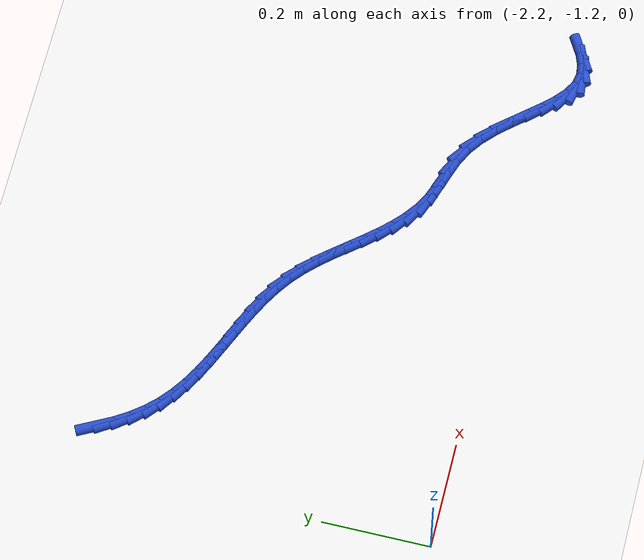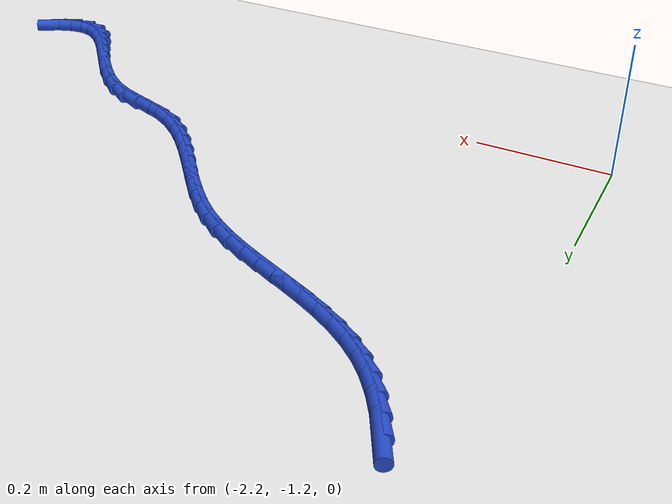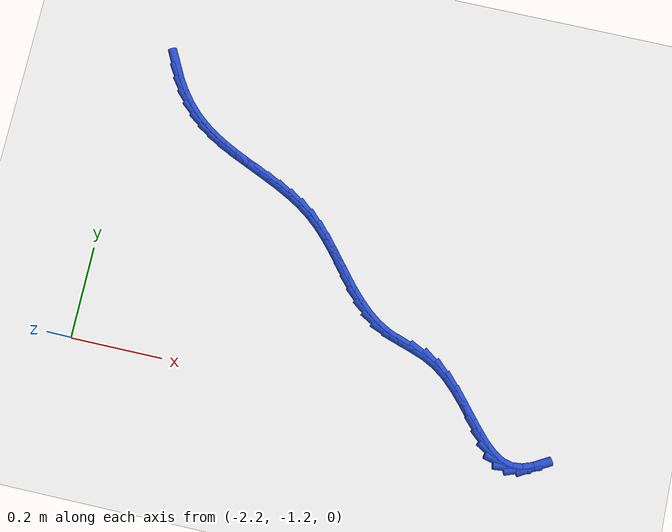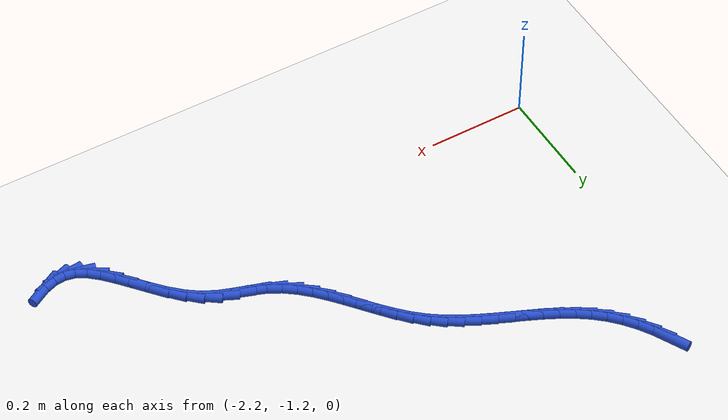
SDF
<sdf version="1.6">
 <world name="default">
  <model name="ground_plane">
   <static>1</static>
   <link name="link">
    <collision name="collision">
     <geometry><plane><normal>0 0 1</normal><size>100 100</size></plane></geometry>
     <surface><friction><ode><mu>100</mu><mu2>50</mu2></ode></friction></surface>
    </collision>
    <visual name="visual">
     <cast_shadows>0</cast_shadows>
     <geometry><plane><normal>0 0 1</normal><size>100 100</size></plane></geometry>
     <material>
      <script><uri>file://media/materials/scripts/gazebo.material</uri><name>Gazebo/WhiteGlow</name></script>
     </material>
    </visual>
   </link>
  </model>
  <model name="line">
   <link name="link_139">
    <pose>-2.1197568017463664 -0.5675922333907893 0.01 0 1.57 -1.0885891091399615</pose>
    <collision name="collision">
     <geometry><cylinder><radius>0.01</radius><length>0.08</length></cylinder></geometry>
    </collision>
    <visual name="visual">
     <material>
      <script><name>Gazebo/Blue</name><uri>file://media/materials/scripts/gazebo.material</uri></script>
     </material>
     <geometry><cylinder><radius>0.01</radius><length>0.08</length></cylinder></geometry>
    </visual>
   </link>
   <link name="link_140">
    <pose>-2.1054016586803446 -0.59501792594363 0.01 0 1.57 -1.002790215187439</pose>
    <collision name="collision">
     <geometry><cylinder><radius>0.01</radius><length>0.08</length></cylinder></geometry>
    </collision>
    <visual name="visual">
     <material>
      <script><name>Gazebo/Blue</name><uri>file://media/materials/scripts/gazebo.material</uri></script>
     </material>
     <geometry><cylinder><radius>0.01</radius><length>0.08</length></cylinder></geometry>
    </visual>
   </link>
   <link name="link_141">
    <pose>-2.0889896447034535 -0.62073567328807 0.01 0 1.57 -0.9102401521810269</pose>
    <collision name="collision">
     <geometry><cylinder><radius>0.01</radius><length>0.08</length></cylinder></geometry>
    </collision>
    <visual name="visual">
     <material>
      <script><name>Gazebo/Blue</name><uri>file://media/materials/scripts/gazebo.material</uri></script>
     </material>
     <geometry><cylinder><radius>0.01</radius><length>0.08</length></cylinder></geometry>
    </visual>
   </link>
   <link name="link_142">
    <pose>-2.0705197054814275 -0.6445066165881634 0.01 0 1.57 -0.8104761698123846</pose>
    <collision name="collision">
     <geometry><cylinder><radius>0.01</radius><length>0.08</length></cylinder></geometry>
    </collision>
    <visual name="visual">
     <material>
      <script><name>Gazebo/Blue</name><uri>file://media/materials/scripts/gazebo.material</uri></script>
     </material>
     <geometry><cylinder><radius>0.01</radius><length>0.08</length></cylinder></geometry>
    </visual>
   </link>
   <link name="link_143">
    <pose>-2.0499907866800045 -0.6660918970079645 0.01 0 1.57 -0.7040634198668666</pose>
    <collision name="collision">
     <geometry><cylinder><radius>0.01</radius><length>0.08</length></cylinder></geometry>
    </collision>
    <visual name="visual">
     <material>
      <script><name>Gazebo/Blue</name><uri>file://media/materials/scripts/gazebo.material</uri></script>
     </material>
     <geometry><cylinder><radius>0.01</radius><length>0.08</length></cylinder></geometry>
    </visual>
   </link>
   <link name="link_144">
    <pose>-2.0274100387263387 -0.685268788837935 0.01 0 1.57 -0.6046933780929197</pose>
    <collision name="collision">
     <geometry><cylinder><radius>0.01</radius><length>0.08</length></cylinder></geometry>
    </collision>
    <visual name="visual">
     <material>
      <script><name>Gazebo/Blue</name><uri>file://media/materials/scripts/gazebo.material</uri></script>
     </material>
     <geometry><cylinder><radius>0.01</radius><length>0.08</length></cylinder></geometry>
    </visual>
   </link>
   <link name="link_145">
    <pose>-2.0029620821564498 -0.7021635280937502 0.01 0 1.57 -0.5261500639224455</pose>
    <collision name="collision">
     <geometry><cylinder><radius>0.01</radius><length>0.08</length></cylinder></geometry>
    </collision>
    <visual name="visual">
     <material>
      <script><name>Gazebo/Blue</name><uri>file://media/materials/scripts/gazebo.material</uri></script>
     </material>
     <geometry><cylinder><radius>0.01</radius><length>0.08</length></cylinder></geometry>
    </visual>
   </link>
   <link name="link_146">
    <pose>-1.9770029793590942 -0.717239459079842 0.01 0 1.57 -0.46896435929841884</pose>
    <collision name="collision">
     <geometry><cylinder><radius>0.01</radius><length>0.08</length></cylinder></geometry>
    </collision>
    <visual name="visual">
     <material>
      <script><name>Gazebo/Blue</name><uri>file://media/materials/scripts/gazebo.material</uri></script>
     </material>
     <geometry><cylinder><radius>0.01</radius><length>0.08</length></cylinder></geometry>
    </visual>
   </link>
   <link name="link_147">
    <pose>-1.949895791381835 -0.7309736876521945 0.01 0 1.57 -0.43229851076975107</pose>
    <collision name="collision">
     <geometry><cylinder><radius>0.01</radius><length>0.08</length></cylinder></geometry>
    </collision>
    <visual name="visual">
     <material>
      <script><name>Gazebo/Blue</name><uri>file://media/materials/scripts/gazebo.material</uri></script>
     </material>
     <geometry><cylinder><radius>0.01</radius><length>0.08</length></cylinder></geometry>
    </visual>
   </link>
   <link name="link_148">
    <pose>-1.9220035792722368 -0.7438433196667894 0.01 0 1.57 -0.4152139679676665</pose>
    <collision name="collision">
     <geometry><cylinder><radius>0.01</radius><length>0.08</length></cylinder></geometry>
    </collision>
    <visual name="visual">
     <material>
      <script><name>Gazebo/Blue</name><uri>file://media/materials/scripts/gazebo.material</uri></script>
     </material>
     <geometry><cylinder><radius>0.01</radius><length>0.08</length></cylinder></geometry>
    </visual>
   </link>
   <link name="link_149">
    <pose>-1.8936894040778642 -0.7563254609796105 0.01 0 1.57 -0.4170906585197495</pose>
    <collision name="collision">
     <geometry><cylinder><radius>0.01</radius><length>0.08</length></cylinder></geometry>
    </collision>
    <visual name="visual">
     <material>
      <script><name>Gazebo/Blue</name><uri>file://media/materials/scripts/gazebo.material</uri></script>
     </material>
     <geometry><cylinder><radius>0.01</radius><length>0.08</length></cylinder></geometry>
    </visual>
   </link>
   <link name="link_150">
    <pose>-1.8653163268462796 -0.7688972174466405 0.01 0 1.57 -0.43778647897770506</pose>
    <collision name="collision">
     <geometry><cylinder><radius>0.01</radius><length>0.08</length></cylinder></geometry>
    </collision>
    <visual name="visual">
     <material>
      <script><name>Gazebo/Blue</name><uri>file://media/materials/scripts/gazebo.material</uri></script>
     </material>
     <geometry><cylinder><radius>0.01</radius><length>0.08</length></cylinder></geometry>
    </visual>
   </link>
   <link name="link_151">
    <pose>-1.8372474086250474 -0.7820356949238625 0.01 0 1.57 -0.47760482023623824</pose>
    <collision name="collision">
     <geometry><cylinder><radius>0.01</radius><length>0.08</length></cylinder></geometry>
    </collision>
    <visual name="visual">
     <material>
      <script><name>Gazebo/Blue</name><uri>file://media/materials/scripts/gazebo.material</uri></script>
     </material>
     <geometry><cylinder><radius>0.01</radius><length>0.08</length></cylinder></geometry>
    </visual>
   </link>
   <link name="link_152">
    <pose>-1.8098457104617325 -0.79621799926726 0.01 0 1.57 -0.537077742854119</pose>
    <collision name="collision">
     <geometry><cylinder><radius>0.01</radius><length>0.08</length></cylinder></geometry>
    </collision>
    <visual name="visual">
     <material>
      <script><name>Gazebo/Blue</name><uri>file://media/materials/scripts/gazebo.material</uri></script>
     </material>
     <geometry><cylinder><radius>0.01</radius><length>0.08</length></cylinder></geometry>
    </visual>
   </link>
   <link name="link_153">
    <pose>-1.7834742934038976 -0.8119212363328153 0.01 0 1.57 -0.616522773784093</pose>
    <collision name="collision">
     <geometry><cylinder><radius>0.01</radius><length>0.08</length></cylinder></geometry>
    </collision>
    <visual name="visual">
     <material>
      <script><name>Gazebo/Blue</name><uri>file://media/materials/scripts/gazebo.material</uri></script>
     </material>
     <geometry><cylinder><radius>0.01</radius><length>0.08</length></cylinder></geometry>
    </visual>
   </link>
   <link name="link_154">
    <pose>-1.7584962184991066 -0.8296225119765122 0.01 0 1.57 -0.7121880990702554</pose>
    <collision name="collision">
     <geometry><cylinder><radius>0.01</radius><length>0.08</length></cylinder></geometry>
    </collision>
    <visual name="visual">
     <material>
      <script><name>Gazebo/Blue</name><uri>file://media/materials/scripts/gazebo.material</uri></script>
     </material>
     <geometry><cylinder><radius>0.01</radius><length>0.08</length></cylinder></geometry>
    </visual>
   </link>
   <link name="link_155">
    <pose>-1.7352189028291274 -0.8497187609547211 0.01 0 1.57 -0.7949141108134725</pose>
    <collision name="collision">
     <geometry><cylinder><radius>0.01</radius><length>0.08</length></cylinder></geometry>
    </collision>
    <visual name="visual">
     <material>
      <script><name>Gazebo/Blue</name><uri>file://media/materials/scripts/gazebo.material</uri></script>
     </material>
     <geometry><cylinder><radius>0.01</radius><length>0.08</length></cylinder></geometry>
    </visual>
   </link>
   <link name="link_156">
    <pose>-1.7134577622026783 -0.8718980490115712 0.01 0 1.57 -0.8506921601592383</pose>
    <collision name="collision">
     <geometry><cylinder><radius>0.01</radius><length>0.08</length></cylinder></geometry>
    </collision>
    <visual name="visual">
     <material>
      <script><name>Gazebo/Blue</name><uri>file://media/materials/scripts/gazebo.material</uri></script>
     </material>
     <geometry><cylinder><radius>0.01</radius><length>0.08</length></cylinder></geometry>
    </visual>
   </link>
   <link name="link_157">
    <pose>-1.6927715859065962 -0.8954786977481475 0.01 0 1.57 -0.8807634041384128</pose>
    <collision name="collision">
     <geometry><cylinder><radius>0.01</radius><length>0.08</length></cylinder></geometry>
    </collision>
    <visual name="visual">
     <material>
      <script><name>Gazebo/Blue</name><uri>file://media/materials/scripts/gazebo.material</uri></script>
     </material>
     <geometry><cylinder><radius>0.01</radius><length>0.08</length></cylinder></geometry>
    </visual>
   </link>
   <link name="link_158">
    <pose>-1.6727169419215184 -0.9197758283365577 0.01 0 1.57 -0.8860224777478446</pose>
    <collision name="collision">
     <geometry><cylinder><radius>0.01</radius><length>0.08</length></cylinder></geometry>
    </collision>
    <visual name="visual">
     <material>
      <script><name>Gazebo/Blue</name><uri>file://media/materials/scripts/gazebo.material</uri></script>
     </material>
     <geometry><cylinder><radius>0.01</radius><length>0.08</length></cylinder></geometry>
    </visual>
   </link>
   <link name="link_159">
    <pose>-1.6528503982280833 -0.94410456194891 0.01 0 1.57 -0.8663577742891753</pose>
    <collision name="collision">
     <geometry><cylinder><radius>0.01</radius><length>0.08</length></cylinder></geometry>
    </collision>
    <visual name="visual">
     <material>
      <script><name>Gazebo/Blue</name><uri>file://media/materials/scripts/gazebo.material</uri></script>
     </material>
     <geometry><cylinder><radius>0.01</radius><length>0.08</length></cylinder></geometry>
    </visual>
   </link>
   <link name="link_160">
    <pose>-1.6327285228069288 -0.9677800197573116 0.01 0 1.57 -0.8205258836279263</pose>
    <collision name="collision">
     <geometry><cylinder><radius>0.01</radius><length>0.08</length></cylinder></geometry>
    </collision>
    <visual name="visual">
     <material>
      <script><name>Gazebo/Blue</name><uri>file://media/materials/scripts/gazebo.material</uri></script>
     </material>
     <geometry><cylinder><radius>0.01</radius><length>0.08</length></cylinder></geometry>
    </visual>
   </link>
   <link name="link_161">
    <pose>-1.6119078836386922 -0.9901173229338702 0.01 0 1.57 -0.7464236305961537</pose>
    <collision name="collision">
     <geometry><cylinder><radius>0.01</radius><length>0.08</length></cylinder></geometry>
    </collision>
    <visual name="visual">
     <material>
      <script><name>Gazebo/Blue</name><uri>file://media/materials/scripts/gazebo.material</uri></script>
     </material>
     <geometry><cylinder><radius>0.01</radius><length>0.08</length></cylinder></geometry>
    </visual>
   </link>
   <link name="link_162">
    <pose>-1.5899450487040117 -1.0104315926506944 0.01 0 1.57 -0.6420049254932203</pose>
    <collision name="collision">
     <geometry><cylinder><radius>0.01</radius><length>0.08</length></cylinder></geometry>
    </collision>
    <visual name="visual">
     <material>
      <script><name>Gazebo/Blue</name><uri>file://media/materials/scripts/gazebo.material</uri></script>
     </material>
     <geometry><cylinder><radius>0.01</radius><length>0.08</length></cylinder></geometry>
    </visual>
   </link>
   <link name="link_163">
    <pose>-1.5663965859835263 -1.0280379500798908 0.01 0 1.57 -0.5072211825043703</pose>
    <collision name="collision">
     <geometry><cylinder><radius>0.01</radius><length>0.08</length></cylinder></geometry>
    </collision>
    <visual name="visual">
     <material>
      <script><name>Gazebo/Blue</name><uri>file://media/materials/scripts/gazebo.material</uri></script>
     </material>
     <geometry><cylinder><radius>0.01</radius><length>0.08</length></cylinder></geometry>
    </visual>
   </link>
   <link name="link_164">
    <pose>-1.540819172584329 -1.0422517307125703 0.01 0 1.57 -0.3708983109529174</pose>
    <collision name="collision">
     <geometry><cylinder><radius>0.01</radius><length>0.08</length></cylinder></geometry>
    </collision>
    <visual name="visual">
     <material>
      <script><name>Gazebo/Blue</name><uri>file://media/materials/scripts/gazebo.material</uri></script>
     </material>
     <geometry><cylinder><radius>0.01</radius><length>0.08</length></cylinder></geometry>
    </visual>
   </link>
   <link name="link_165">
    <pose>-1.5130975557088842 -1.0530325836032488 0.01 0 1.57 -0.3132760881215061</pose>
    <collision name="collision">
     <geometry><cylinder><radius>0.01</radius><length>0.08</length></cylinder></geometry>
    </collision>
    <visual name="visual">
     <material>
      <script><name>Gazebo/Blue</name><uri>file://media/materials/scripts/gazebo.material</uri></script>
     </material>
     <geometry><cylinder><radius>0.01</radius><length>0.08</length></cylinder></geometry>
    </visual>
   </link>
   <link name="link_166">
    <pose>-1.4841674931612507 -1.0624042910372546 0.01 0 1.57 -0.34437838035450097</pose>
    <collision name="collision">
     <geometry><cylinder><radius>0.01</radius><length>0.08</length></cylinder></geometry>
    </collision>
    <visual name="visual">
     <material>
      <script><name>Gazebo/Blue</name><uri>file://media/materials/scripts/gazebo.material</uri></script>
     </material>
     <geometry><cylinder><radius>0.01</radius><length>0.08</length></cylinder></geometry>
    </visual>
   </link>
   <link name="link_167">
    <pose>-1.4551747767387704 -1.0728031317528308 0.01 0 1.57 -0.4609758888361882</pose>
    <collision name="collision">
     <geometry><cylinder><radius>0.01</radius><length>0.08</length></cylinder></geometry>
    </collision>
    <visual name="visual">
     <material>
      <script><name>Gazebo/Blue</name><uri>file://media/materials/scripts/gazebo.material</uri></script>
     </material>
     <geometry><cylinder><radius>0.01</radius><length>0.08</length></cylinder></geometry>
    </visual>
   </link>
   <link name="link_168">
    <pose>-1.4272650295067322 -1.0866649207023713 0.01 0 1.57 -0.6283117336241427</pose>
    <collision name="collision">
     <geometry><cylinder><radius>0.01</radius><length>0.08</length></cylinder></geometry>
    </collision>
    <visual name="visual">
     <material>
      <script><name>Gazebo/Blue</name><uri>file://media/materials/scripts/gazebo.material</uri></script>
     </material>
     <geometry><cylinder><radius>0.01</radius><length>0.08</length></cylinder></geometry>
    </visual>
   </link>
   <link name="link_169">
    <pose>-1.4012666633469557 -1.1055535693834886 0.01 0 1.57 -0.7548331537158052</pose>
    <collision name="collision">
     <geometry><cylinder><radius>0.01</radius><length>0.08</length></cylinder></geometry>
    </collision>
    <visual name="visual">
     <material>
      <script><name>Gazebo/Blue</name><uri>file://media/materials/scripts/gazebo.material</uri></script>
     </material>
     <geometry><cylinder><radius>0.01</radius><length>0.08</length></cylinder></geometry>
    </visual>
   </link>
   <link name="link_170">
    <pose>-1.3770320581526707 -1.1283502160904104 0.01 0 1.57 -0.8326902254114328</pose>
    <collision name="collision">
     <geometry><cylinder><radius>0.01</radius><length>0.08</length></cylinder></geometry>
    </collision>
    <visual name="visual">
     <material>
      <script><name>Gazebo/Blue</name><uri>file://media/materials/scripts/gazebo.material</uri></script>
     </material>
     <geometry><cylinder><radius>0.01</radius><length>0.08</length></cylinder></geometry>
    </visual>
   </link>
   <link name="link_171">
    <pose>-1.3542264800013586 -1.15342168817598 0.01 0 1.57 -0.869582272334641</pose>
    <collision name="collision">
     <geometry><cylinder><radius>0.01</radius><length>0.08</length></cylinder></geometry>
    </collision>
    <visual name="visual">
     <material>
      <script><name>Gazebo/Blue</name><uri>file://media/materials/scripts/gazebo.material</uri></script>
     </material>
     <geometry><cylinder><radius>0.01</radius><length>0.08</length></cylinder></geometry>
    </visual>
   </link>
   <link name="link_172">
    <pose>-1.3325151949705 -1.179134812993041 0.01 0 1.57 -0.8677515327462341</pose>
    <collision name="collision">
     <geometry><cylinder><radius>0.01</radius><length>0.08</length></cylinder></geometry>
    </collision>
    <visual name="visual">
     <material>
      <script><name>Gazebo/Blue</name><uri>file://media/materials/scripts/gazebo.material</uri></script>
     </material>
     <geometry><cylinder><radius>0.01</radius><length>0.08</length></cylinder></geometry>
    </visual>
   </link>
   <link name="link_173">
    <pose>-1.3115634691375775 -1.2038564178944386 0.01 0 1.57 -0.8222156654410507</pose>
    <collision name="collision">
     <geometry><cylinder><radius>0.01</radius><length>0.08</length></cylinder></geometry>
    </collision>
    <visual name="visual">
     <material>
      <script><name>Gazebo/Blue</name><uri>file://media/materials/scripts/gazebo.material</uri></script>
     </material>
     <geometry><cylinder><radius>0.01</radius><length>0.08</length></cylinder></geometry>
    </visual>
   </link>
   <link name="link_174">
    <pose>-1.2910365685800715 -1.2259533302330168 0.01 0 1.57 -0.7176326147742574</pose>
    <collision name="collision">
     <geometry><cylinder><radius>0.01</radius><length>0.08</length></cylinder></geometry>
    </collision>
    <visual name="visual">
     <material>
      <script><name>Gazebo/Blue</name><uri>file://media/materials/scripts/gazebo.material</uri></script>
     </material>
     <geometry><cylinder><radius>0.01</radius><length>0.08</length></cylinder></geometry>
    </visual>
   </link>
   <link name="link_175">
    <pose>-1.2705997593754634 -1.2437923773616189 0.01 0 1.57 -0.5238731636145084</pose>
    <collision name="collision">
     <geometry><cylinder><radius>0.01</radius><length>0.08</length></cylinder></geometry>
    </collision>
    <visual name="visual">
     <material>
      <script><name>Gazebo/Blue</name><uri>file://media/materials/scripts/gazebo.material</uri></script>
     </material>
     <geometry><cylinder><radius>0.01</radius><length>0.08</length></cylinder></geometry>
    </visual>
   </link>
   <link name="link_176">
    <pose>-1.2499183076012352 -1.2557403866330896 0.01 0 1.57 -0.21737885144110558</pose>
    <collision name="collision">
     <geometry><cylinder><radius>0.01</radius><length>0.08</length></cylinder></geometry>
    </collision>
    <visual name="visual">
     <material>
      <script><name>Gazebo/Blue</name><uri>file://media/materials/scripts/gazebo.material</uri></script>
     </material>
     <geometry><cylinder><radius>0.01</radius><length>0.08</length></cylinder></geometry>
    </visual>
   </link>
   <link name="link_177">
    <pose>-1.2286896839180337 -1.260429127413436 0.01 0 1.57 0.10319943766401553</pose>
    <collision name="collision">
     <geometry><cylinder><radius>0.01</radius><length>0.08</length></cylinder></geometry>
    </collision>
    <visual name="visual">
     <material>
      <script><name>Gazebo/Blue</name><uri>file://media/materials/scripts/gazebo.material</uri></script>
     </material>
     <geometry><cylinder><radius>0.01</radius><length>0.08</length></cylinder></geometry>
    </visual>
   </link>
   <link name="link_178">
    <pose>-1.2068147454847173 -1.2581635976276522 0.01 0 1.57 0.3513785759160468</pose>
    <collision name="collision">
     <geometry><cylinder><radius>0.01</radius><length>0.08</length></cylinder></geometry>
    </collision>
    <visual name="visual">
     <material>
      <script><name>Gazebo/Blue</name><uri>file://media/materials/scripts/gazebo.material</uri></script>
     </material>
     <geometry><cylinder><radius>0.01</radius><length>0.08</length></cylinder></geometry>
    </visual>
   </link>
   <link name="link_179">
    <pose>-1.184273527146876 -1.249900177509036 0.01 0 1.57 0.520142901855085</pose>
    <collision name="collision">
     <geometry><cylinder><radius>0.01</radius><length>0.08</length></cylinder></geometry>
    </collision>
    <visual name="visual">
     <material>
      <script><name>Gazebo/Blue</name><uri>file://media/materials/scripts/gazebo.material</uri></script>
     </material>
     <geometry><cylinder><radius>0.01</radius><length>0.08</length></cylinder></geometry>
    </visual>
   </link>
  </model>
 </world>
</sdf>
